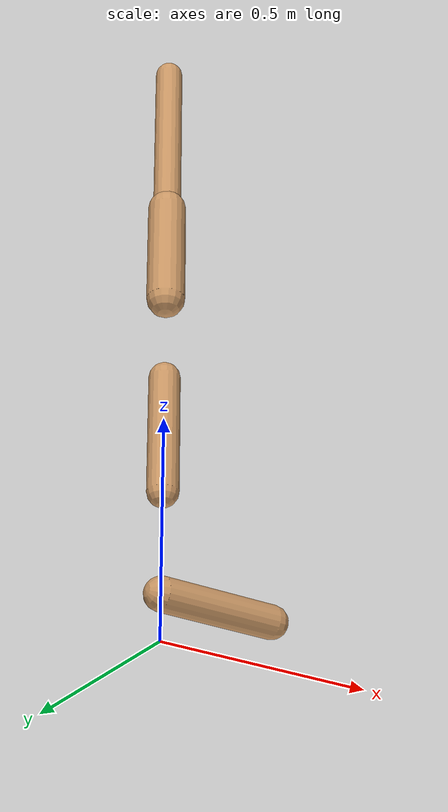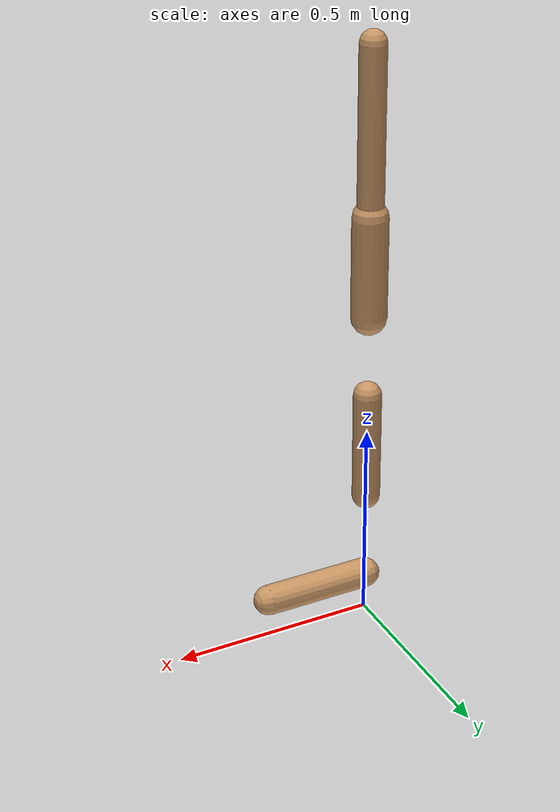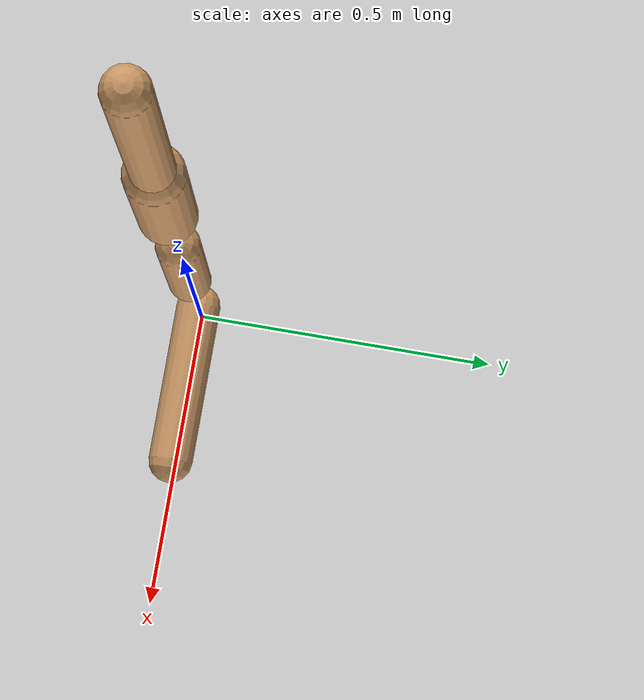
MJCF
<mujoco model="walker2d">
  <compiler angle="degree" coordinate="global" inertiafromgeom="true" />
  <default>
    <joint armature="0.01" damping=".1" limited="true" />
    <geom conaffinity="0" condim="3" contype="1" density="1000" friction="0.8 .1 .1" rgba="0.8 0.6 .4 1" />
  </default>
  <option integrator="RK4" timestep="0.002" />
  <worldbody>

    <body name="torso" pos="0 0 -0.4316571835026205">
      <joint armature="0" axis="1 0 0" damping="0" limited="false" name="ignorex" pos="0 0 0" stiffness="0" type="slide" />
      <joint armature="0" axis="0 0 1" damping="0" limited="false" name="ignorez" pos="0 0 0" ref="1.25" stiffness="0" type="slide" />
      <joint armature="0" axis="0 1 0" damping="0" limited="false" name="ignorey" pos="0 0 0" stiffness="0" type="hinge" />
      <geom fromto="0 0 1.45 0 0 1.05" name="torso_geom" size="0.03151004501183346" type="capsule" />
      <body name="thigh">
        <joint axis="0 -1 0" name="thigh_joint" pos="0 0 1.05" range="-150 0" type="hinge" />
        <geom fromto="0.0 0.0 1.05 0.0 0.0 0.8044691921854518" name="thigh_geom" size="0.04290519260673517" type="capsule" />
        <body name="leg" pos="0.0 0.0 0.2044691921854518">
          <joint axis="0 -1 0" name="leg_joint" pos="0 0 0.6" range="-150 0" type="hinge" />
          <geom fromto="0.0 0.0 0.6 0.0 0.0 0.3271879913171687" name="leg_geom" size="0.03432415408538814" type="capsule" />
          <body name="foot" pos="0.0 0.0 0.22718799131716869">
            <joint axis="0 -1 0" name="foot_joint" pos="0 0 0.1" range="-45 45" type="hinge" />
            <geom fromto="-0.0 0.0 0.1 0.2653219113191618 0.0 0.1" name="foot_geom" size="0.03663895611044362" type="capsule" />
          </body>
        </body>
      </body>

      <body name="thigh_left">
        <joint axis="0 -1 0" name="thigh_left_joint" pos="0 0 1.05" range="-150 0" type="hinge" />
        <geom fromto="0.0 0.0 1.05 0.0 0.0 0.8044691921854518" name="thigh_left_geom" rgba=".7 .3 .6 1" size="0.04290519260673517" type="capsule" />
        <body name="leg_left" pos="0.0 0.0 0.2044691921854518">
          <joint axis="0 -1 0" name="leg_left_joint" pos="0 0 0.6" range="-150 0" type="hinge" />
          <geom fromto="0.0 0.0 0.6 0.0 0.0 0.3271879913171687" name="leg_left_geom" rgba=".7 .3 .6 1" size="0.03432415408538814" type="capsule" />
          <body name="foot_left" pos="0.0 0.0 0.22718799131716869">
            <joint axis="0 -1 0" name="foot_left_joint" pos="0 0 0.1" range="-45 45" type="hinge" />
            <geom fromto="-0.0 0.0 0.1 0.2653219113191618 0.0 0.1" name="foot_left_geom" rgba=".7 .3 .6 1" size="0.03663895611044362" type="capsule" />
          </body>
        </body>
      </body>
    </body>
  </worldbody>
  <actuator>

    <motor ctrllimited="true" ctrlrange="-1.0 1.0" gear="100" joint="thigh_joint" />
    <motor ctrllimited="true" ctrlrange="-1.0 1.0" gear="100" joint="leg_joint" />
    <motor ctrllimited="true" ctrlrange="-1.0 1.0" gear="100" joint="foot_joint" />
    <motor ctrllimited="true" ctrlrange="-1.0 1.0" gear="100" joint="thigh_left_joint" />
    <motor ctrllimited="true" ctrlrange="-1.0 1.0" gear="100" joint="leg_left_joint" />
    <motor ctrllimited="true" ctrlrange="-1.0 1.0" gear="100" joint="foot_left_joint" />

  </actuator>
</mujoco>
